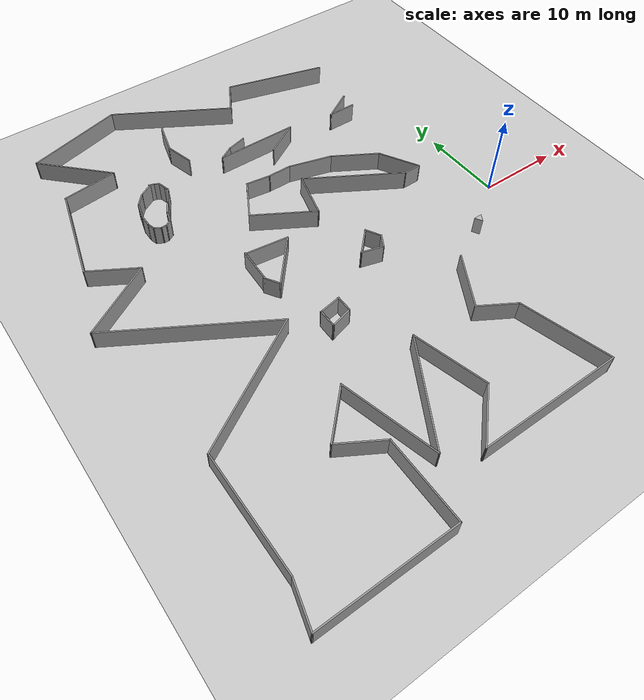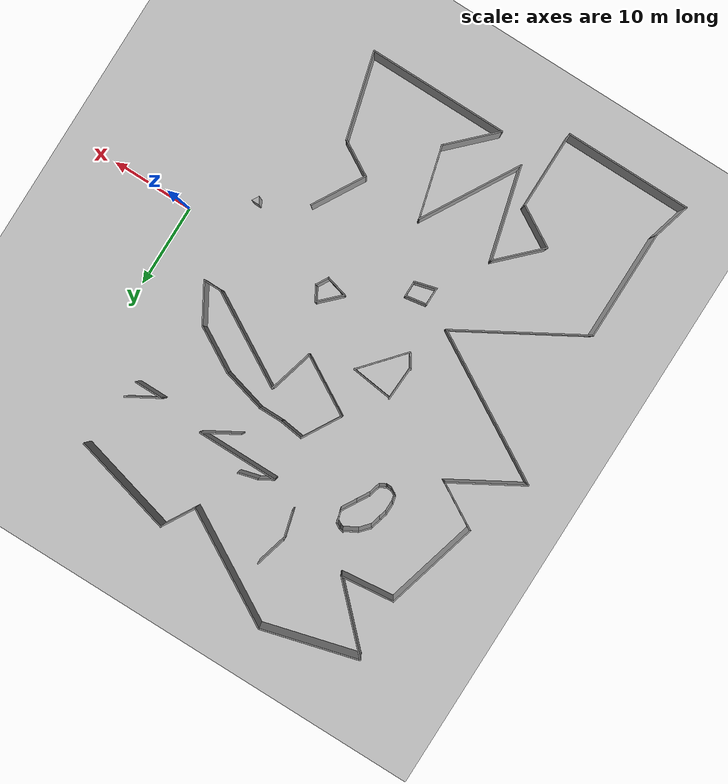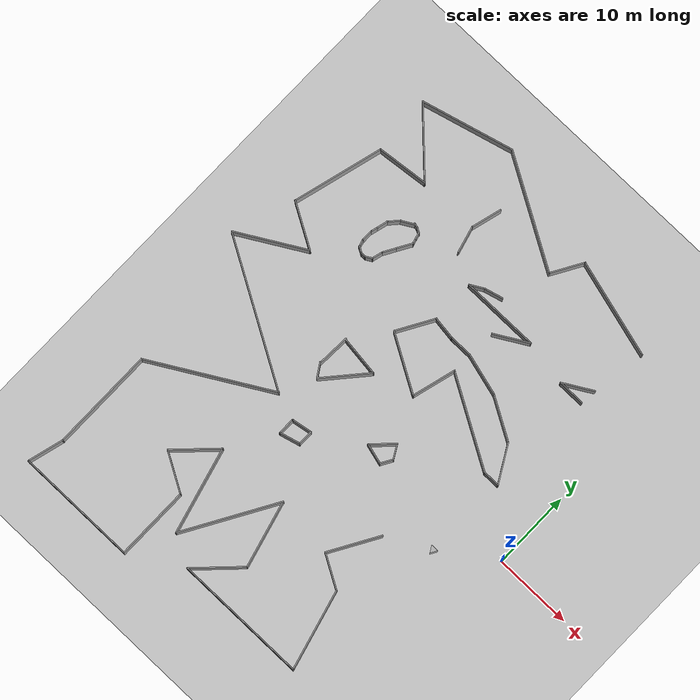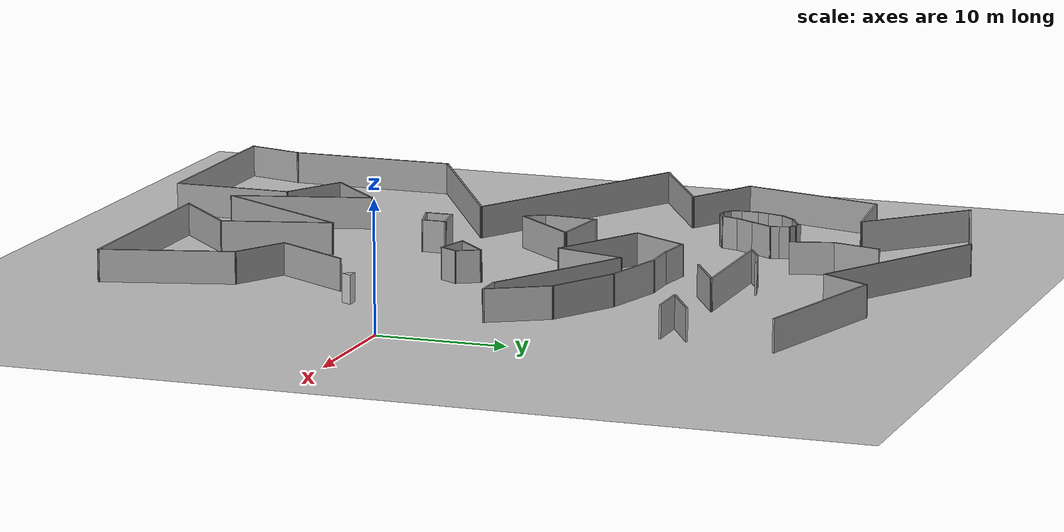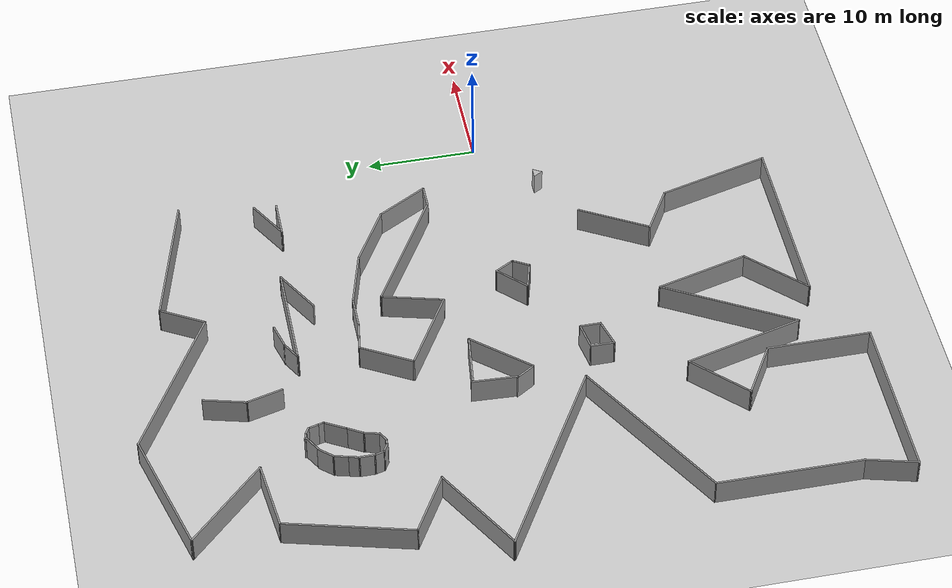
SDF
<sdf version="1.7">
 <world name="default">
  <model name="ground_plane">
   <static>1</static>
   <link name="link">
    <collision name="collision">
     <geometry><plane><normal>0 0 1</normal><size>100 100</size></plane></geometry>
     <surface><friction><ode><mu>100</mu><mu2>50</mu2></ode></friction></surface>
    </collision>
    <visual name="visual">
     <cast_shadows>0</cast_shadows>
     <geometry><plane><normal>0 0 1</normal><size>100 100</size></plane></geometry>
     <material>
      <script><uri>file://media/materials/scripts/gazebo.material</uri><name>Gazebo/Grey</name></script>
     </material>
    </visual>
   </link>
  </model>
  <model name="custommap6">
   <pose>-0.870903 3.00034 0 0 -0 0</pose>
   <link name="Wall_0">
    <collision name="Wall_0_Collision">
     <geometry><box><size>11.75 0.15 2.5</size></box></geometry>
     <pose>0 0 1.25 0 -0 0</pose>
    </collision>
    <visual name="Wall_0_Visual">
     <pose>0 0 1.25 0 -0 0</pose>
     <geometry><box><size>11.75 0.15 2.5</size></box></geometry>
     <material>
      <script><uri>file://media/materials/scripts/gazebo.material</uri><name>Gazebo/Grey</name></script>
      <ambient>1 1 1 1</ambient>
     </material>
     <meta><layer>0</layer></meta>
    </visual>
    <pose>-43.8325 16.3365 0 0 -0 -1.8326</pose>
   </link>
   <link name="Wall_1">
    <collision name="Wall_1_Collision">
     <geometry><box><size>6.25 0.15 2.5</size></box></geometry>
     <pose>0 0 1.25 0 -0 0</pose>
    </collision>
    <visual name="Wall_1_Visual">
     <pose>0 0 1.25 0 -0 0</pose>
     <geometry><box><size>6.25 0.15 2.5</size></box></geometry>
     <material>
      <script><uri>file://media/materials/scripts/gazebo.material</uri><name>Gazebo/Grey</name></script>
      <ambient>1 1 1 1</ambient>
     </material>
     <meta><layer>0</layer></meta>
    </visual>
    <pose>-42.6923 9.20912 0 0 -0 -0.523599</pose>
   </link>
   <link name="Wall_10">
    <collision name="Wall_10_Collision">
     <geometry><box><size>6.5 0.15 2.5</size></box></geometry>
     <pose>0 0 1.25 0 -0 0</pose>
    </collision>
    <visual name="Wall_10_Visual">
     <pose>0 0 1.25 0 -0 0</pose>
     <geometry><box><size>6.5 0.15 2.5</size></box></geometry>
     <material>
      <script><uri>file://media/materials/scripts/gazebo.material</uri><name>Gazebo/Grey</name></script>
      <ambient>1 1 1 1</ambient>
     </material>
     <meta><layer>0</layer></meta>
    </visual>
    <pose>-33.5624 -18.2391 0 0 -0 0.785398</pose>
   </link>
   <link name="Wall_100">
    <collision name="Wall_100_Collision">
     <geometry><box><size>4.2808 0.15 2.5</size></box></geometry>
     <pose>0 0 1.25 0 -0 0</pose>
    </collision>
    <visual name="Wall_100_Visual">
     <pose>0 0 1.25 0 -0 0</pose>
     <geometry><box><size>4.2808 0.15 2.5</size></box></geometry>
     <material>
      <script><uri>file://media/materials/scripts/gazebo.material</uri><name>Gazebo/Grey</name></script>
      <ambient>1 1 1 1</ambient>
     </material>
     <meta><layer>0</layer></meta>
    </visual>
    <pose>-29.9794 1.06037 0 0 -0 -1.61612</pose>
   </link>
   <link name="Wall_101">
    <collision name="Wall_101_Collision">
     <geometry><box><size>1.95484 0.15 2.5</size></box></geometry>
     <pose>0 0 1.25 0 -0 0</pose>
    </collision>
    <visual name="Wall_101_Visual">
     <pose>0 0 1.25 0 -0 0</pose>
     <geometry><box><size>1.95484 0.15 2.5</size></box></geometry>
     <material>
      <script><uri>file://media/materials/scripts/gazebo.material</uri><name>Gazebo/Grey</name></script>
      <ambient>1 1 1 1</ambient>
     </material>
     <meta><layer>0</layer></meta>
    </visual>
    <pose>-29.6783 -1.66827 0 0 -0 -0.999139</pose>
   </link>
   <link name="Wall_102">
    <collision name="Wall_102_Collision">
     <geometry><box><size>6.66101 0.15 2.5</size></box></geometry>
     <pose>0 0 1.25 0 -0 0</pose>
    </collision>
    <visual name="Wall_102_Visual">
     <pose>0 0 1.25 0 -0 0</pose>
     <geometry><box><size>6.66101 0.15 2.5</size></box></geometry>
     <material>
      <script><uri>file://media/materials/scripts/gazebo.material</uri><name>Gazebo/Grey</name></script>
      <ambient>1 1 1 1</ambient>
     </material>
     <meta><layer>0</layer></meta>
    </visual>
    <pose>-26.9643 -0.060719 0 0 -0 0.856667</pose>
   </link>
   <link name="Wall_104">
    <collision name="Wall_104_Collision">
     <geometry><box><size>5.07582 0.15 2.5</size></box></geometry>
     <pose>0 0 1.25 0 -0 0</pose>
    </collision>
    <visual name="Wall_104_Visual">
     <pose>0 0 1.25 0 -0 0</pose>
     <geometry><box><size>5.07582 0.15 2.5</size></box></geometry>
     <material>
      <script><uri>file://media/materials/scripts/gazebo.material</uri><name>Gazebo/Grey</name></script>
      <ambient>1 1 1 1</ambient>
     </material>
     <meta><layer>0</layer></meta>
    </visual>
    <pose>-27.2767 2.69877 0 0 -0 -0.121876</pose>
   </link>
   <link name="Wall_11">
    <collision name="Wall_11_Collision">
     <geometry><box><size>11.25 0.15 2.5</size></box></geometry>
     <pose>0 0 1.25 0 -0 0</pose>
    </collision>
    <visual name="Wall_11_Visual">
     <pose>0 0 1.25 0 -0 0</pose>
     <geometry><box><size>11.25 0.15 2.5</size></box></geometry>
     <material>
      <script><uri>file://media/materials/scripts/gazebo.material</uri><name>Gazebo/Grey</name></script>
      <ambient>1 1 1 1</ambient>
     </material>
     <meta><layer>0</layer></meta>
    </visual>
    <pose>-29.8809 -21.3549 0 0 -0 -1.309</pose>
   </link>
   <link name="Wall_12">
    <collision name="Wall_12_Collision">
     <geometry><box><size>13 0.15 2.5</size></box></geometry>
     <pose>0 0 1.25 0 -0 0</pose>
    </collision>
    <visual name="Wall_12_Visual">
     <pose>0 0 1.25 0 -0 0</pose>
     <geometry><box><size>13 0.15 2.5</size></box></geometry>
     <material>
      <script><uri>file://media/materials/scripts/gazebo.material</uri><name>Gazebo/Grey</name></script>
      <ambient>1 1 1 1</ambient>
     </material>
     <meta><layer>0</layer></meta>
    </visual>
    <pose>-25.232 -21.1516 0 0 -0 1.0472</pose>
   </link>
   <link name="Wall_124">
    <collision name="Wall_124_Collision">
     <geometry><box><size>4.25 0.15 2.5</size></box></geometry>
     <pose>0 0 1.25 0 -0 0</pose>
    </collision>
    <visual name="Wall_124_Visual">
     <pose>0 0 1.25 0 -0 0</pose>
     <geometry><box><size>4.25 0.15 2.5</size></box></geometry>
     <material>
      <script><uri>file://media/materials/scripts/gazebo.material</uri><name>Gazebo/Grey</name></script>
      <ambient>1 1 1 1</ambient>
     </material>
     <meta><layer>0</layer></meta>
    </visual>
    <pose>-6.60542 17.6004 0 0 -0 -2.61799</pose>
   </link>
   <link name="Wall_125">
    <collision name="Wall_125_Collision">
     <geometry><box><size>3.5 0.15 2.5</size></box></geometry>
     <pose>0 0 1.25 0 -0 0</pose>
    </collision>
    <visual name="Wall_125_Visual">
     <pose>0 0 1.25 0 -0 0</pose>
     <geometry><box><size>3.5 0.15 2.5</size></box></geometry>
     <material>
      <script><uri>file://media/materials/scripts/gazebo.material</uri><name>Gazebo/Grey</name></script>
      <ambient>1 1 1 1</ambient>
     </material>
     <meta><layer>0</layer></meta>
    </visual>
    <pose>-6.70577 16.5754 0 0 -0 0</pose>
   </link>
   <link name="Wall_13">
    <collision name="Wall_13_Collision">
     <geometry><box><size>8.75 0.15 2.5</size></box></geometry>
     <pose>0 0 1.25 0 -0 0</pose>
    </collision>
    <visual name="Wall_13_Visual">
     <pose>0 0 1.25 0 -0 0</pose>
     <geometry><box><size>8.75 0.15 2.5</size></box></geometry>
     <material>
      <script><uri>file://media/materials/scripts/gazebo.material</uri><name>Gazebo/Grey</name></script>
      <ambient>1 1 1 1</ambient>
     </material>
     <meta><layer>0</layer></meta>
    </visual>
    <pose>-20.9066 -19.7408 0 0 -0 -1.309</pose>
   </link>
   <link name="Wall_14">
    <collision name="Wall_14_Collision">
     <geometry><box><size>7 0.15 2.5</size></box></geometry>
     <pose>0 0 1.25 0 -0 0</pose>
    </collision>
    <visual name="Wall_14_Visual">
     <pose>0 0 1.25 0 -0 0</pose>
     <geometry><box><size>7 0.15 2.5</size></box></geometry>
     <material>
      <script><uri>file://media/materials/scripts/gazebo.material</uri><name>Gazebo/Grey</name></script>
      <ambient>1 1 1 1</ambient>
     </material>
     <meta><layer>0</layer></meta>
    </visual>
    <pose>-22.2155 -26.3162 0 0 -0 -2.35619</pose>
   </link>
   <link name="Wall_15">
    <collision name="Wall_15_Collision">
     <geometry><box><size>17 0.15 2.5</size></box></geometry>
     <pose>0 0 1.25 0 -0 0</pose>
    </collision>
    <visual name="Wall_15_Visual">
     <pose>0 0 1.25 0 -0 0</pose>
     <geometry><box><size>17 0.15 2.5</size></box></geometry>
     <material>
      <script><uri>file://media/materials/scripts/gazebo.material</uri><name>Gazebo/Grey</name></script>
      <ambient>1 1 1 1</ambient>
     </material>
     <meta><layer>0</layer></meta>
    </visual>
    <pose>-16.2123 -28.738 0 0 -0 0</pose>
   </link>
   <link name="Wall_16">
    <collision name="Wall_16_Collision">
     <geometry><box><size>10.5 0.15 2.5</size></box></geometry>
     <pose>0 0 1.25 0 -0 0</pose>
    </collision>
    <visual name="Wall_16_Visual">
     <pose>0 0 1.25 0 -0 0</pose>
     <geometry><box><size>10.5 0.15 2.5</size></box></geometry>
     <material>
      <script><uri>file://media/materials/scripts/gazebo.material</uri><name>Gazebo/Grey</name></script>
      <ambient>1 1 1 1</ambient>
     </material>
     <meta><layer>0</layer></meta>
    </visual>
    <pose>-9.12671 -23.7393 0 0 -0 1.8326</pose>
   </link>
   <link name="Wall_162">
    <collision name="Wall_162_Collision">
     <geometry><box><size>4 0.15 2.5</size></box></geometry>
     <pose>0 0 1.25 0 -0 0</pose>
    </collision>
    <visual name="Wall_162_Visual">
     <pose>0 0 1.25 0 -0 0</pose>
     <geometry><box><size>4 0.15 2.5</size></box></geometry>
     <material>
      <script><uri>file://media/materials/scripts/gazebo.material</uri><name>Gazebo/Grey</name></script>
      <ambient>1 1 1 1</ambient>
     </material>
     <meta><layer>0</layer></meta>
    </visual>
    <pose>-27.8334 24.5468 0 0 -0 -1.8326</pose>
   </link>
   <link name="Wall_163">
    <collision name="Wall_163_Collision">
     <geometry><box><size>3.5 0.15 2.5</size></box></geometry>
     <pose>0 0 1.25 0 -0 0</pose>
    </collision>
    <visual name="Wall_163_Visual">
     <pose>0 0 1.25 0 -0 0</pose>
     <geometry><box><size>3.5 0.15 2.5</size></box></geometry>
     <material>
      <script><uri>file://media/materials/scripts/gazebo.material</uri><name>Gazebo/Grey</name></script>
      <ambient>1 1 1 1</ambient>
     </material>
     <meta><layer>0</layer></meta>
    </visual>
    <pose>-27.8981 21.0695 0 0 -0 -1.309</pose>
   </link>
   <link name="Wall_17">
    <collision name="Wall_17_Collision">
     <geometry><box><size>4.75 0.15 2.5</size></box></geometry>
     <pose>0 0 1.25 0 -0 0</pose>
    </collision>
    <visual name="Wall_17_Visual">
     <pose>0 0 1.25 0 -0 0</pose>
     <geometry><box><size>4.75 0.15 2.5</size></box></geometry>
     <material>
      <script><uri>file://media/materials/scripts/gazebo.material</uri><name>Gazebo/Grey</name></script>
      <ambient>1 1 1 1</ambient>
     </material>
     <meta><layer>0</layer></meta>
    </visual>
    <pose>-12.458 -17.5907 0 0 -0 2.61799</pose>
   </link>
   <link name="Wall_18">
    <collision name="Wall_18_Collision">
     <geometry><box><size>7 0.15 2.5</size></box></geometry>
     <pose>0 0 1.25 0 -0 0</pose>
    </collision>
    <visual name="Wall_18_Visual">
     <pose>0 0 1.25 0 -0 0</pose>
     <geometry><box><size>7 0.15 2.5</size></box></geometry>
     <material>
      <script><uri>file://media/materials/scripts/gazebo.material</uri><name>Gazebo/Grey</name></script>
      <ambient>1 1 1 1</ambient>
     </material>
     <meta><layer>0</layer></meta>
    </visual>
    <pose>-12.7373 -13.4745 0 0 -0 1.0472</pose>
   </link>
   <link name="Wall_2">
    <collision name="Wall_2_Collision">
     <geometry><box><size>9.5 0.15 2.5</size></box></geometry>
     <pose>0 0 1.25 0 -0 0</pose>
    </collision>
    <visual name="Wall_2_Visual">
     <pose>0 0 1.25 0 -0 0</pose>
     <geometry><box><size>9.5 0.15 2.5</size></box></geometry>
     <material>
      <script><uri>file://media/materials/scripts/gazebo.material</uri><name>Gazebo/Grey</name></script>
      <ambient>1 1 1 1</ambient>
     </material>
     <meta><layer>0</layer></meta>
    </visual>
    <pose>-44.0996 5.34662 0 0 -0 -2.61799</pose>
   </link>
   <link name="Wall_3">
    <collision name="Wall_3_Collision">
     <geometry><box><size>19.75 0.15 2.5</size></box></geometry>
     <pose>0 0 1.25 0 -0 0</pose>
    </collision>
    <visual name="Wall_3_Visual">
     <pose>0 0 1.25 0 -0 0</pose>
     <geometry><box><size>19.75 0.15 2.5</size></box></geometry>
     <material>
      <script><uri>file://media/materials/scripts/gazebo.material</uri><name>Gazebo/Grey</name></script>
      <ambient>1 1 1 1</ambient>
     </material>
     <meta><layer>0</layer></meta>
    </visual>
    <pose>-39.6612 -1.89088 0 0 -0 -0.523599</pose>
   </link>
   <link name="Wall_4">
    <collision name="Wall_4_Collision">
     <geometry><box><size>16.5 0.15 2.5</size></box></geometry>
     <pose>0 0 1.25 0 -0 0</pose>
    </collision>
    <visual name="Wall_4_Visual">
     <pose>0 0 1.25 0 -0 0</pose>
     <geometry><box><size>16.5 0.15 2.5</size></box></geometry>
     <material>
      <script><uri>file://media/materials/scripts/gazebo.material</uri><name>Gazebo/Grey</name></script>
      <ambient>1 1 1 1</ambient>
     </material>
     <meta><layer>0</layer></meta>
    </visual>
    <pose>-38.2539 -10.8784 0 0 -0 -2.61799</pose>
   </link>
   <link name="Wall_41">
    <collision name="Wall_41_Collision">
     <geometry><box><size>12.75 0.15 2.5</size></box></geometry>
     <pose>0 0 1.25 0 -0 0</pose>
    </collision>
    <visual name="Wall_41_Visual">
     <pose>0 0 1.25 0 -0 0</pose>
     <geometry><box><size>12.75 0.15 2.5</size></box></geometry>
     <material>
      <script><uri>file://media/materials/scripts/gazebo.material</uri><name>Gazebo/Grey</name></script>
      <ambient>1 1 1 1</ambient>
     </material>
     <meta><layer>0</layer></meta>
    </visual>
    <pose>-9.89467 27.0852 0 0 -0 2.87979</pose>
   </link>
   <link name="Wall_42">
    <collision name="Wall_42_Collision">
     <geometry><box><size>4.5 0.15 2.5</size></box></geometry>
     <pose>0 0 1.25 0 -0 0</pose>
    </collision>
    <visual name="Wall_42_Visual">
     <pose>0 0 1.25 0 -0 0</pose>
     <geometry><box><size>4.5 0.15 2.5</size></box></geometry>
     <material>
      <script><uri>file://media/materials/scripts/gazebo.material</uri><name>Gazebo/Grey</name></script>
      <ambient>1 1 1 1</ambient>
     </material>
     <meta><layer>0</layer></meta>
    </visual>
    <pose>-17.0675 26.8321 0 0 -0 -2.0944</pose>
   </link>
   <link name="Wall_43">
    <collision name="Wall_43_Collision">
     <geometry><box><size>15.25 0.15 2.5</size></box></geometry>
     <pose>0 0 1.25 0 -0 0</pose>
    </collision>
    <visual name="Wall_43_Visual">
     <pose>0 0 1.25 0 -0 0</pose>
     <geometry><box><size>15.25 0.15 2.5</size></box></geometry>
     <material>
      <script><uri>file://media/materials/scripts/gazebo.material</uri><name>Gazebo/Grey</name></script>
      <ambient>1 1 1 1</ambient>
     </material>
     <meta><layer>0</layer></meta>
    </visual>
    <pose>-24.6935 28.7235 0 0 -0 2.61799</pose>
   </link>
   <link name="Wall_44">
    <collision name="Wall_44_Collision">
     <geometry><box><size>12 0.15 2.5</size></box></geometry>
     <pose>0 0 1.25 0 -0 0</pose>
    </collision>
    <visual name="Wall_44_Visual">
     <pose>0 0 1.25 0 -0 0</pose>
     <geometry><box><size>12 0.15 2.5</size></box></geometry>
     <material>
      <script><uri>file://media/materials/scripts/gazebo.material</uri><name>Gazebo/Grey</name></script>
      <ambient>1 1 1 1</ambient>
     </material>
     <meta><layer>0</layer></meta>
    </visual>
    <pose>-36.9551 30.965 0 0 -0 -2.87979</pose>
   </link>
   <link name="Wall_45">
    <collision name="Wall_45_Collision">
     <geometry><box><size>9.75 0.15 2.5</size></box></geometry>
     <pose>0 0 1.25 0 -0 0</pose>
    </collision>
    <visual name="Wall_45_Visual">
     <pose>0 0 1.25 0 -0 0</pose>
     <geometry><box><size>9.75 0.15 2.5</size></box></geometry>
     <material>
      <script><uri>file://media/materials/scripts/gazebo.material</uri><name>Gazebo/Grey</name></script>
      <ambient>1 1 1 1</ambient>
     </material>
     <meta><layer>0</layer></meta>
    </visual>
    <pose>-39.2841 26.0374 0 0 -0 -0.785398</pose>
   </link>
   <link name="Wall_46">
    <collision name="Wall_46_Collision">
     <geometry><box><size>6.62982 0.15 2.5</size></box></geometry>
     <pose>0 0 1.25 0 -0 0</pose>
    </collision>
    <visual name="Wall_46_Visual">
     <pose>0 0 1.25 0 -0 0</pose>
     <geometry><box><size>6.62982 0.15 2.5</size></box></geometry>
     <material>
      <script><uri>file://media/materials/scripts/gazebo.material</uri><name>Gazebo/Grey</name></script>
      <ambient>1 1 1 1</ambient>
     </material>
     <meta><layer>0</layer></meta>
    </visual>
    <pose>-39.1107 22.2911 0 0 -0 -3.03266</pose>
   </link>
   <link name="Wall_48">
    <collision name="Wall_48_Collision">
     <geometry><box><size>5.25 0.15 2.5</size></box></geometry>
     <pose>0 0 1.25 0 -0 0</pose>
    </collision>
    <visual name="Wall_48_Visual">
     <pose>0 0 1.25 0 -0 0</pose>
     <geometry><box><size>5.25 0.15 2.5</size></box></geometry>
     <material>
      <script><uri>file://media/materials/scripts/gazebo.material</uri><name>Gazebo/Grey</name></script>
      <ambient>1 1 1 1</ambient>
     </material>
     <meta><layer>0</layer></meta>
    </visual>
    <pose>-25.2046 9.83013 0 0 -0 -2.0944</pose>
   </link>
   <link name="Wall_49">
    <collision name="Wall_49_Collision">
     <geometry><box><size>8 0.15 2.5</size></box></geometry>
     <pose>0 0 1.25 0 -0 0</pose>
    </collision>
    <visual name="Wall_49_Visual">
     <pose>0 0 1.25 0 -0 0</pose>
     <geometry><box><size>8 0.15 2.5</size></box></geometry>
     <material>
      <script><uri>file://media/materials/scripts/gazebo.material</uri><name>Gazebo/Grey</name></script>
      <ambient>1 1 1 1</ambient>
     </material>
     <meta><layer>0</layer></meta>
    </visual>
    <pose>-23.0805 5.65927 0 0 -0 -0.523599</pose>
   </link>
   <link name="Wall_5">
    <collision name="Wall_5_Collision">
     <geometry><box><size>13.25 0.15 2.5</size></box></geometry>
     <pose>0 0 1.25 0 -0 0</pose>
    </collision>
    <visual name="Wall_5_Visual">
     <pose>0 0 1.25 0 -0 0</pose>
     <geometry><box><size>13.25 0.15 2.5</size></box></geometry>
     <material>
      <script><uri>file://media/materials/scripts/gazebo.material</uri><name>Gazebo/Grey</name></script>
      <ambient>1 1 1 1</ambient>
     </material>
     <meta><layer>0</layer></meta>
    </visual>
    <pose>-45.3337 -21.5159 0 0 -0 -1.5708</pose>
   </link>
   <link name="Wall_50">
    <collision name="Wall_50_Collision">
     <geometry><box><size>5.75 0.15 2.5</size></box></geometry>
     <pose>0 0 1.25 0 -0 0</pose>
    </collision>
    <visual name="Wall_50_Visual">
     <pose>0 0 1.25 0 -0 0</pose>
     <geometry><box><size>5.75 0.15 2.5</size></box></geometry>
     <material>
      <script><uri>file://media/materials/scripts/gazebo.material</uri><name>Gazebo/Grey</name></script>
      <ambient>1 1 1 1</ambient>
     </material>
     <meta><layer>0</layer></meta>
    </visual>
    <pose>-18.9566 6.40136 0 0 -0 1.309</pose>
   </link>
   <link name="Wall_51">
    <collision name="Wall_51_Collision">
     <geometry><box><size>12.5 0.15 2.5</size></box></geometry>
     <pose>0 0 1.25 0 -0 0</pose>
    </collision>
    <visual name="Wall_51_Visual">
     <pose>0 0 1.25 0 -0 0</pose>
     <geometry><box><size>12.5 0.15 2.5</size></box></geometry>
     <material>
      <script><uri>file://media/materials/scripts/gazebo.material</uri><name>Gazebo/Grey</name></script>
      <ambient>1 1 1 1</ambient>
     </material>
     <meta><layer>0</layer></meta>
    </visual>
    <pose>-12.8842 6.01845 0 0 -0 -0.523599</pose>
   </link>
   <link name="Wall_52">
    <collision name="Wall_52_Collision">
     <geometry><box><size>2.25 0.15 2.5</size></box></geometry>
     <pose>0 0 1.25 0 -0 0</pose>
    </collision>
    <visual name="Wall_52_Visual">
     <pose>0 0 1.25 0 -0 0</pose>
     <geometry><box><size>2.25 0.15 2.5</size></box></geometry>
     <material>
      <script><uri>file://media/materials/scripts/gazebo.material</uri><name>Gazebo/Grey</name></script>
      <ambient>1 1 1 1</ambient>
     </material>
     <meta><layer>0</layer></meta>
    </visual>
    <pose>-6.48654 2.93095 0 0 -0 0</pose>
   </link>
   <link name="Wall_53">
    <collision name="Wall_53_Collision">
     <geometry><box><size>5.25 0.15 2.5</size></box></geometry>
     <pose>0 0 1.25 0 -0 0</pose>
    </collision>
    <visual name="Wall_53_Visual">
     <pose>0 0 1.25 0 -0 0</pose>
     <geometry><box><size>5.25 0.15 2.5</size></box></geometry>
     <material>
      <script><uri>file://media/materials/scripts/gazebo.material</uri><name>Gazebo/Grey</name></script>
      <ambient>1 1 1 1</ambient>
     </material>
     <meta><layer>0</layer></meta>
    </visual>
    <pose>-6.71153 5.13932 0 0 -0 2.0944</pose>
   </link>
   <link name="Wall_54">
    <collision name="Wall_54_Collision">
     <geometry><box><size>6 0.15 2.5</size></box></geometry>
     <pose>0 0 1.25 0 -0 0</pose>
    </collision>
    <visual name="Wall_54_Visual">
     <pose>0 0 1.25 0 -0 0</pose>
     <geometry><box><size>6 0.15 2.5</size></box></geometry>
     <material>
      <script><uri>file://media/materials/scripts/gazebo.material</uri><name>Gazebo/Grey</name></script>
      <ambient>1 1 1 1</ambient>
     </material>
     <meta><layer>0</layer></meta>
    </visual>
    <pose>-10.5197 8.81018 0 0 -0 2.61799</pose>
   </link>
   <link name="Wall_55">
    <collision name="Wall_55_Collision">
     <geometry><box><size>5.5 0.15 2.5</size></box></geometry>
     <pose>0 0 1.25 0 -0 0</pose>
    </collision>
    <visual name="Wall_55_Visual">
     <pose>0 0 1.25 0 -0 0</pose>
     <geometry><box><size>5.5 0.15 2.5</size></box></geometry>
     <material>
      <script><uri>file://media/materials/scripts/gazebo.material</uri><name>Gazebo/Grey</name></script>
      <ambient>1 1 1 1</ambient>
     </material>
     <meta><layer>0</layer></meta>
    </visual>
    <pose>-15.6366 10.965 0 0 -0 2.87979</pose>
   </link>
   <link name="Wall_56">
    <collision name="Wall_56_Collision">
     <geometry><box><size>3 0.15 2.5</size></box></geometry>
     <pose>0 0 1.25 0 -0 0</pose>
    </collision>
    <visual name="Wall_56_Visual">
     <pose>0 0 1.25 0 -0 0</pose>
     <geometry><box><size>3 0.15 2.5</size></box></geometry>
     <material>
      <script><uri>file://media/materials/scripts/gazebo.material</uri><name>Gazebo/Grey</name></script>
      <ambient>1 1 1 1</ambient>
     </material>
     <meta><layer>0</layer></meta>
    </visual>
    <pose>-19.6455 11.6574 0 0 -0 3.14159</pose>
   </link>
   <link name="Wall_57">
    <collision name="Wall_57_Collision">
     <geometry><box><size>3.03444 0.15 2.5</size></box></geometry>
     <pose>0 0 1.25 0 -0 0</pose>
    </collision>
    <visual name="Wall_57_Visual">
     <pose>0 0 1.25 0 -0 0</pose>
     <geometry><box><size>3.03444 0.15 2.5</size></box></geometry>
     <material>
      <script><uri>file://media/materials/scripts/gazebo.material</uri><name>Gazebo/Grey</name></script>
      <ambient>1 1 1 1</ambient>
     </material>
     <meta><layer>0</layer></meta>
    </visual>
    <pose>-22.5001 11.8479 0 0 -0 3.00907</pose>
   </link>
   <link name="Wall_6">
    <collision name="Wall_6_Collision">
     <geometry><box><size>4.75 0.15 2.5</size></box></geometry>
     <pose>0 0 1.25 0 -0 0</pose>
    </collision>
    <visual name="Wall_6_Visual">
     <pose>0 0 1.25 0 -0 0</pose>
     <geometry><box><size>4.75 0.15 2.5</size></box></geometry>
     <material>
      <script><uri>file://media/materials/scripts/gazebo.material</uri><name>Gazebo/Grey</name></script>
      <ambient>1 1 1 1</ambient>
     </material>
     <meta><layer>0</layer></meta>
    </visual>
    <pose>-45.929 -30.2875 0 0 -0 -1.8326</pose>
   </link>
   <link name="Wall_68">
    <collision name="Wall_68_Collision">
     <geometry><box><size>3.5 0.15 2.5</size></box></geometry>
     <pose>0 0 1.25 0 -0 0</pose>
    </collision>
    <visual name="Wall_68_Visual">
     <pose>0 0 1.25 0 -0 0</pose>
     <geometry><box><size>3.5 0.15 2.5</size></box></geometry>
     <material>
      <script><uri>file://media/materials/scripts/gazebo.material</uri><name>Gazebo/Grey</name></script>
      <ambient>1 1 1 1</ambient>
     </material>
     <meta><layer>0</layer></meta>
    </visual>
    <pose>-18.3344 -2.81271 0 0 -0 -2.35619</pose>
   </link>
   <link name="Wall_69">
    <collision name="Wall_69_Collision">
     <geometry><box><size>2.75 0.15 2.5</size></box></geometry>
     <pose>0 0 1.25 0 -0 0</pose>
    </collision>
    <visual name="Wall_69_Visual">
     <pose>0 0 1.25 0 -0 0</pose>
     <geometry><box><size>2.75 0.15 2.5</size></box></geometry>
     <material>
      <script><uri>file://media/materials/scripts/gazebo.material</uri><name>Gazebo/Grey</name></script>
      <ambient>1 1 1 1</ambient>
     </material>
     <meta><layer>0</layer></meta>
    </visual>
    <pose>-18.2631 -4.33358 0 0 -0 -0.261799</pose>
   </link>
   <link name="Wall_7">
    <collision name="Wall_7_Collision">
     <geometry><box><size>15.5 0.15 2.5</size></box></geometry>
     <pose>0 0 1.25 0 -0 0</pose>
    </collision>
    <visual name="Wall_7_Visual">
     <pose>0 0 1.25 0 -0 0</pose>
     <geometry><box><size>15.5 0.15 2.5</size></box></geometry>
     <material>
      <script><uri>file://media/materials/scripts/gazebo.material</uri><name>Gazebo/Grey</name></script>
      <ambient>1 1 1 1</ambient>
     </material>
     <meta><layer>0</layer></meta>
    </visual>
    <pose>-38.8493 -32.5091 0 0 -0 0</pose>
   </link>
   <link name="Wall_70">
    <collision name="Wall_70_Collision">
     <geometry><box><size>1.75 0.15 2.5</size></box></geometry>
     <pose>0 0 1.25 0 -0 0</pose>
    </collision>
    <visual name="Wall_70_Visual">
     <pose>0 0 1.25 0 -0 0</pose>
     <geometry><box><size>1.75 0.15 2.5</size></box></geometry>
     <material>
      <script><uri>file://media/materials/scripts/gazebo.material</uri><name>Gazebo/Grey</name></script>
      <ambient>1 1 1 1</ambient>
     </material>
     <meta><layer>0</layer></meta>
    </visual>
    <pose>-16.6074 -3.97722 0 0 -0 1.0472</pose>
   </link>
   <link name="Wall_71">
    <collision name="Wall_71_Collision">
     <geometry><box><size>2.05556 0.15 2.5</size></box></geometry>
     <pose>0 0 1.25 0 -0 0</pose>
    </collision>
    <visual name="Wall_71_Visual">
     <pose>0 0 1.25 0 -0 0</pose>
     <geometry><box><size>2.05556 0.15 2.5</size></box></geometry>
     <material>
      <script><uri>file://media/materials/scripts/gazebo.material</uri><name>Gazebo/Grey</name></script>
      <ambient>1 1 1 1</ambient>
     </material>
     <meta><layer>0</layer></meta>
    </visual>
    <pose>-16.6787 -2.45636 0 0 -0 2.08824</pose>
   </link>
   <link name="Wall_73">
    <collision name="Wall_73_Collision">
     <geometry><box><size>2.25 0.15 2.5</size></box></geometry>
     <pose>0 0 1.25 0 -0 0</pose>
    </collision>
    <visual name="Wall_73_Visual">
     <pose>0 0 1.25 0 -0 0</pose>
     <geometry><box><size>2.25 0.15 2.5</size></box></geometry>
     <material>
      <script><uri>file://media/materials/scripts/gazebo.material</uri><name>Gazebo/Grey</name></script>
      <ambient>1 1 1 1</ambient>
     </material>
     <meta><layer>0</layer></meta>
    </visual>
    <pose>-27.8037 -9.02745 0 0 -0 -1.5708</pose>
   </link>
   <link name="Wall_74">
    <collision name="Wall_74_Collision">
     <geometry><box><size>2.75 0.15 2.5</size></box></geometry>
     <pose>0 0 1.25 0 -0 0</pose>
    </collision>
    <visual name="Wall_74_Visual">
     <pose>0 0 1.25 0 -0 0</pose>
     <geometry><box><size>2.75 0.15 2.5</size></box></geometry>
     <material>
      <script><uri>file://media/materials/scripts/gazebo.material</uri><name>Gazebo/Grey</name></script>
      <ambient>1 1 1 1</ambient>
     </material>
     <meta><layer>0</layer></meta>
    </visual>
    <pose>-26.548 -9.74099 0 0 -0 0.261799</pose>
   </link>
   <link name="Wall_75">
    <collision name="Wall_75_Collision">
     <geometry><box><size>2 0.15 2.5</size></box></geometry>
     <pose>0 0 1.25 0 -0 0</pose>
    </collision>
    <visual name="Wall_75_Visual">
     <pose>0 0 1.25 0 -0 0</pose>
     <geometry><box><size>2 0.15 2.5</size></box></geometry>
     <material>
      <script><uri>file://media/materials/scripts/gazebo.material</uri><name>Gazebo/Grey</name></script>
      <ambient>1 1 1 1</ambient>
     </material>
     <meta><layer>0</layer></meta>
    </visual>
    <pose>-25.2923 -8.47952 0 0 -0 1.5708</pose>
   </link>
   <link name="Wall_76">
    <collision name="Wall_76_Collision">
     <geometry><box><size>2.69677 0.15 2.5</size></box></geometry>
     <pose>0 0 1.25 0 -0 0</pose>
    </collision>
    <visual name="Wall_76_Visual">
     <pose>0 0 1.25 0 -0 0</pose>
     <geometry><box><size>2.69677 0.15 2.5</size></box></geometry>
     <material>
      <script><uri>file://media/materials/scripts/gazebo.material</uri><name>Gazebo/Grey</name></script>
      <ambient>1 1 1 1</ambient>
     </material>
     <meta><layer>0</layer></meta>
    </visual>
    <pose>-26.548 -7.76599 0 0 -0 -2.97476</pose>
   </link>
   <link name="Wall_78">
    <collision name="Wall_78_Collision">
     <geometry><box><size>1.75 0.15 2.5</size></box></geometry>
     <pose>0 0 1.25 0 -0 0</pose>
    </collision>
    <visual name="Wall_78_Visual">
     <pose>0 0 1.25 0 -0 0</pose>
     <geometry><box><size>1.75 0.15 2.5</size></box></geometry>
     <material>
      <script><uri>file://media/materials/scripts/gazebo.material</uri><name>Gazebo/Grey</name></script>
      <ambient>1 1 1 1</ambient>
     </material>
     <meta><layer>0</layer></meta>
    </visual>
    <pose>-34.0983 17.88 0 0 -0 -2.61799</pose>
   </link>
   <link name="Wall_79">
    <collision name="Wall_79_Collision">
     <geometry><box><size>1.70733 0.15 2.5</size></box></geometry>
     <pose>0 0 1.25 0 -0 0</pose>
    </collision>
    <visual name="Wall_79_Visual">
     <pose>0 0 1.25 0 -0 0</pose>
     <geometry><box><size>1.70733 0.15 2.5</size></box></geometry>
     <material>
      <script><uri>file://media/materials/scripts/gazebo.material</uri><name>Gazebo/Grey</name></script>
      <ambient>1 1 1 1</ambient>
     </material>
     <meta><layer>0</layer></meta>
    </visual>
    <pose>-35.3762 16.8955 0 0 -0 -2.29243</pose>
   </link>
   <link name="Wall_8">
    <collision name="Wall_8_Collision">
     <geometry><box><size>9.5 0.15 2.5</size></box></geometry>
     <pose>0 0 1.25 0 -0 0</pose>
    </collision>
    <visual name="Wall_8_Visual">
     <pose>0 0 1.25 0 -0 0</pose>
     <geometry><box><size>9.5 0.15 2.5</size></box></geometry>
     <material>
      <script><uri>file://media/materials/scripts/gazebo.material</uri><name>Gazebo/Grey</name></script>
      <ambient>1 1 1 1</ambient>
     </material>
     <meta><layer>0</layer></meta>
    </visual>
    <pose>-31.1743 -27.8341 0 0 -0 1.5708</pose>
   </link>
   <link name="Wall_80">
    <collision name="Wall_80_Collision">
     <geometry><box><size>1.5 0.15 2.5</size></box></geometry>
     <pose>0 0 1.25 0 -0 0</pose>
    </collision>
    <visual name="Wall_80_Visual">
     <pose>0 0 1.25 0 -0 0</pose>
     <geometry><box><size>1.5 0.15 2.5</size></box></geometry>
     <material>
      <script><uri>file://media/materials/scripts/gazebo.material</uri><name>Gazebo/Grey</name></script>
      <ambient>1 1 1 1</ambient>
     </material>
     <meta><layer>0</layer></meta>
    </visual>
    <pose>-36.0653 15.6589 0 0 -0 -1.8326</pose>
   </link>
   <link name="Wall_81">
    <collision name="Wall_81_Collision">
     <geometry><box><size>1 0.15 2.5</size></box></geometry>
     <pose>0 0 1.25 0 -0 0</pose>
    </collision>
    <visual name="Wall_81_Visual">
     <pose>0 0 1.25 0 -0 0</pose>
     <geometry><box><size>1 0.15 2.5</size></box></geometry>
     <material>
      <script><uri>file://media/materials/scripts/gazebo.material</uri><name>Gazebo/Grey</name></script>
      <ambient>1 1 1 1</ambient>
     </material>
     <meta><layer>0</layer></meta>
    </visual>
    <pose>-36.35 14.5964 0 0 -0 -1.8326</pose>
   </link>
   <link name="Wall_82">
    <collision name="Wall_82_Collision">
     <geometry><box><size>1.5 0.15 2.5</size></box></geometry>
     <pose>0 0 1.25 0 -0 0</pose>
    </collision>
    <visual name="Wall_82_Visual">
     <pose>0 0 1.25 0 -0 0</pose>
     <geometry><box><size>1.5 0.15 2.5</size></box></geometry>
     <material>
      <script><uri>file://media/materials/scripts/gazebo.material</uri><name>Gazebo/Grey</name></script>
      <ambient>1 1 1 1</ambient>
     </material>
     <meta><layer>0</layer></meta>
    </visual>
    <pose>-36.46 13.5109 0 0 -0 -1.5708</pose>
   </link>
   <link name="Wall_83">
    <collision name="Wall_83_Collision">
     <geometry><box><size>1 0.15 2.5</size></box></geometry>
     <pose>0 0 1.25 0 -0 0</pose>
    </collision>
    <visual name="Wall_83_Visual">
     <pose>0 0 1.25 0 -0 0</pose>
     <geometry><box><size>1 0.15 2.5</size></box></geometry>
     <material>
      <script><uri>file://media/materials/scripts/gazebo.material</uri><name>Gazebo/Grey</name></script>
      <ambient>1 1 1 1</ambient>
     </material>
     <meta><layer>0</layer></meta>
    </visual>
    <pose>-36.35 12.4253 0 0 -0 -1.309</pose>
   </link>
   <link name="Wall_84">
    <collision name="Wall_84_Collision">
     <geometry><box><size>1 0.15 2.5</size></box></geometry>
     <pose>0 0 1.25 0 -0 0</pose>
    </collision>
    <visual name="Wall_84_Visual">
     <pose>0 0 1.25 0 -0 0</pose>
     <geometry><box><size>1 0.15 2.5</size></box></geometry>
     <material>
      <script><uri>file://media/materials/scripts/gazebo.material</uri><name>Gazebo/Grey</name></script>
      <ambient>1 1 1 1</ambient>
     </material>
     <meta><layer>0</layer></meta>
    </visual>
    <pose>-35.872 11.8023 0 0 -0 -0.523599</pose>
   </link>
   <link name="Wall_85">
    <collision name="Wall_85_Collision">
     <geometry><box><size>0.75 0.15 2.5</size></box></geometry>
     <pose>0 0 1.25 0 -0 0</pose>
    </collision>
    <visual name="Wall_85_Visual">
     <pose>0 0 1.25 0 -0 0</pose>
     <geometry><box><size>0.75 0.15 2.5</size></box></geometry>
     <material>
      <script><uri>file://media/materials/scripts/gazebo.material</uri><name>Gazebo/Grey</name></script>
      <ambient>1 1 1 1</ambient>
     </material>
     <meta><layer>0</layer></meta>
    </visual>
    <pose>-35.2039 11.5898 0 0 -0 0</pose>
   </link>
   <link name="Wall_86">
    <collision name="Wall_86_Collision">
     <geometry><box><size>1 0.15 2.5</size></box></geometry>
     <pose>0 0 1.25 0 -0 0</pose>
    </collision>
    <visual name="Wall_86_Visual">
     <pose>0 0 1.25 0 -0 0</pose>
     <geometry><box><size>1 0.15 2.5</size></box></geometry>
     <material>
      <script><uri>file://media/materials/scripts/gazebo.material</uri><name>Gazebo/Grey</name></script>
      <ambient>1 1 1 1</ambient>
     </material>
     <meta><layer>0</layer></meta>
    </visual>
    <pose>-34.5359 11.8023 0 0 -0 0.523599</pose>
   </link>
   <link name="Wall_87">
    <collision name="Wall_87_Collision">
     <geometry><box><size>1.5 0.15 2.5</size></box></geometry>
     <pose>0 0 1.25 0 -0 0</pose>
    </collision>
    <visual name="Wall_87_Visual">
     <pose>0 0 1.25 0 -0 0</pose>
     <geometry><box><size>1.5 0.15 2.5</size></box></geometry>
     <material>
      <script><uri>file://media/materials/scripts/gazebo.material</uri><name>Gazebo/Grey</name></script>
      <ambient>1 1 1 1</ambient>
     </material>
     <meta><layer>0</layer></meta>
    </visual>
    <pose>-33.9931 12.6668 0 0 -0 1.309</pose>
   </link>
   <link name="Wall_88">
    <collision name="Wall_88_Collision">
     <geometry><box><size>1.75 0.15 2.5</size></box></geometry>
     <pose>0 0 1.25 0 -0 0</pose>
    </collision>
    <visual name="Wall_88_Visual">
     <pose>0 0 1.25 0 -0 0</pose>
     <geometry><box><size>1.75 0.15 2.5</size></box></geometry>
     <material>
      <script><uri>file://media/materials/scripts/gazebo.material</uri><name>Gazebo/Grey</name></script>
      <ambient>1 1 1 1</ambient>
     </material>
     <meta><layer>0</layer></meta>
    </visual>
    <pose>-33.4184 14.0116 0 0 -0 1.0472</pose>
   </link>
   <link name="Wall_89">
    <collision name="Wall_89_Collision">
     <geometry><box><size>2.25 0.15 2.5</size></box></geometry>
     <pose>0 0 1.25 0 -0 0</pose>
    </collision>
    <visual name="Wall_89_Visual">
     <pose>0 0 1.25 0 -0 0</pose>
     <geometry><box><size>2.25 0.15 2.5</size></box></geometry>
     <material>
      <script><uri>file://media/materials/scripts/gazebo.material</uri><name>Gazebo/Grey</name></script>
      <ambient>1 1 1 1</ambient>
     </material>
     <meta><layer>0</layer></meta>
    </visual>
    <pose>-32.4934 15.6138 0 0 -0 1.0472</pose>
   </link>
   <link name="Wall_9">
    <collision name="Wall_9_Collision">
     <geometry><box><size>5.5 0.15 2.5</size></box></geometry>
     <pose>0 0 1.25 0 -0 0</pose>
    </collision>
    <visual name="Wall_9_Visual">
     <pose>0 0 1.25 0 -0 0</pose>
     <geometry><box><size>5.5 0.15 2.5</size></box></geometry>
     <material>
      <script><uri>file://media/materials/scripts/gazebo.material</uri><name>Gazebo/Grey</name></script>
      <ambient>1 1 1 1</ambient>
     </material>
     <meta><layer>0</layer></meta>
    </visual>
    <pose>-33.4909 -21.8216 0 0 -0 2.61799</pose>
   </link>
   <link name="Wall_90">
    <collision name="Wall_90_Collision">
     <geometry><box><size>0.75 0.15 2.5</size></box></geometry>
     <pose>0 0 1.25 0 -0 0</pose>
    </collision>
    <visual name="Wall_90_Visual">
     <pose>0 0 1.25 0 -0 0</pose>
     <geometry><box><size>0.75 0.15 2.5</size></box></geometry>
     <material>
      <script><uri>file://media/materials/scripts/gazebo.material</uri><name>Gazebo/Grey</name></script>
      <ambient>1 1 1 1</ambient>
     </material>
     <meta><layer>0</layer></meta>
    </visual>
    <pose>-32.046 16.8129 0 0 -0 1.8326</pose>
   </link>
   <link name="Wall_91">
    <collision name="Wall_91_Collision">
     <geometry><box><size>1 0.15 2.5</size></box></geometry>
     <pose>0 0 1.25 0 -0 0</pose>
    </collision>
    <visual name="Wall_91_Visual">
     <pose>0 0 1.25 0 -0 0</pose>
     <geometry><box><size>1 0.15 2.5</size></box></geometry>
     <material>
      <script><uri>file://media/materials/scripts/gazebo.material</uri><name>Gazebo/Grey</name></script>
      <ambient>1 1 1 1</ambient>
     </material>
     <meta><layer>0</layer></meta>
    </visual>
    <pose>-32.2337 17.5132 0 0 -0 1.8326</pose>
   </link>
   <link name="Wall_92">
    <collision name="Wall_92_Collision">
     <geometry><box><size>0.75 0.15 2.5</size></box></geometry>
     <pose>0 0 1.25 0 -0 0</pose>
    </collision>
    <visual name="Wall_92_Visual">
     <pose>0 0 1.25 0 -0 0</pose>
     <geometry><box><size>0.75 0.15 2.5</size></box></geometry>
     <material>
      <script><uri>file://media/materials/scripts/gazebo.material</uri><name>Gazebo/Grey</name></script>
      <ambient>1 1 1 1</ambient>
     </material>
     <meta><layer>0</layer></meta>
    </visual>
    <pose>-32.6035 18.0737 0 0 -0 2.61799</pose>
   </link>
   <link name="Wall_93">
    <collision name="Wall_93_Collision">
     <geometry><box><size>0.75 0.15 2.5</size></box></geometry>
     <pose>0 0 1.25 0 -0 0</pose>
    </collision>
    <visual name="Wall_93_Visual">
     <pose>0 0 1.25 0 -0 0</pose>
     <geometry><box><size>0.75 0.15 2.5</size></box></geometry>
     <material>
      <script><uri>file://media/materials/scripts/gazebo.material</uri><name>Gazebo/Grey</name></script>
      <ambient>1 1 1 1</ambient>
     </material>
     <meta><layer>0</layer></meta>
    </visual>
    <pose>-33.1531 18.3014 0 0 -0 2.87979</pose>
   </link>
   <link name="Wall_95">
    <collision name="Wall_95_Collision">
     <geometry><box><size>2.5 0.15 2.5</size></box></geometry>
     <pose>0 0 1.25 0 -0 0</pose>
    </collision>
    <visual name="Wall_95_Visual">
     <pose>0 0 1.25 0 -0 0</pose>
     <geometry><box><size>2.5 0.15 2.5</size></box></geometry>
     <material>
      <script><uri>file://media/materials/scripts/gazebo.material</uri><name>Gazebo/Grey</name></script>
      <ambient>1 1 1 1</ambient>
     </material>
     <meta><layer>0</layer></meta>
    </visual>
    <pose>-21.1778 18.7585 0 0 -0 -2.87979</pose>
   </link>
   <link name="Wall_96">
    <collision name="Wall_96_Collision">
     <geometry><box><size>2 0.15 2.5</size></box></geometry>
     <pose>0 0 1.25 0 -0 0</pose>
    </collision>
    <visual name="Wall_96_Visual">
     <pose>0 0 1.25 0 -0 0</pose>
     <geometry><box><size>2 0.15 2.5</size></box></geometry>
     <material>
      <script><uri>file://media/materials/scripts/gazebo.material</uri><name>Gazebo/Grey</name></script>
      <ambient>1 1 1 1</ambient>
     </material>
     <meta><layer>0</layer></meta>
    </visual>
    <pose>-23.1138 17.9919 0 0 -0 -2.61799</pose>
   </link>
   <link name="Wall_97">
    <collision name="Wall_97_Collision">
     <geometry><box><size>10 0.15 2.5</size></box></geometry>
     <pose>0 0 1.25 0 -0 0</pose>
    </collision>
    <visual name="Wall_97_Visual">
     <pose>0 0 1.25 0 -0 0</pose>
     <geometry><box><size>10 0.15 2.5</size></box></geometry>
     <material>
      <script><uri>file://media/materials/scripts/gazebo.material</uri><name>Gazebo/Grey</name></script>
      <ambient>1 1 1 1</ambient>
     </material>
     <meta><layer>0</layer></meta>
    </visual>
    <pose>-18.9899 17.5294 0 0 -0 0</pose>
   </link>
   <link name="Wall_98">
    <collision name="Wall_98_Collision">
     <geometry><box><size>4.75 0.15 2.5</size></box></geometry>
     <pose>0 0 1.25 0 -0 0</pose>
    </collision>
    <visual name="Wall_98_Visual">
     <pose>0 0 1.25 0 -0 0</pose>
     <geometry><box><size>4.75 0.15 2.5</size></box></geometry>
     <material>
      <script><uri>file://media/materials/scripts/gazebo.material</uri><name>Gazebo/Grey</name></script>
      <ambient>1 1 1 1</ambient>
     </material>
     <meta><layer>0</layer></meta>
    </visual>
    <pose>-16.0568 16.3794 0 0 -0 -2.61799</pose>
   </link>
   <static>1</static>
  </model>
  <model name="Prism">
   <pose>-9.2447 -4.87085 0.5 0 -0 0</pose>
   <static>1</static>
   <link name="link">
    <collision name="collision">
     <geometry>
      <mesh><uri>model://prism_model/meshes/Triangular_Prism_v2.obj</uri><scale>0.1 0.1 0.1</scale></mesh>
     </geometry>
    </collision>
    <visual name="visual">
     <geometry>
      <mesh><uri>model://prism_model/meshes/Triangular_Prism_v2.obj</uri><scale>0.1 0.1 0.1</scale></mesh>
     </geometry>
    </visual>
   </link>
  </model>
 </world>
</sdf>
